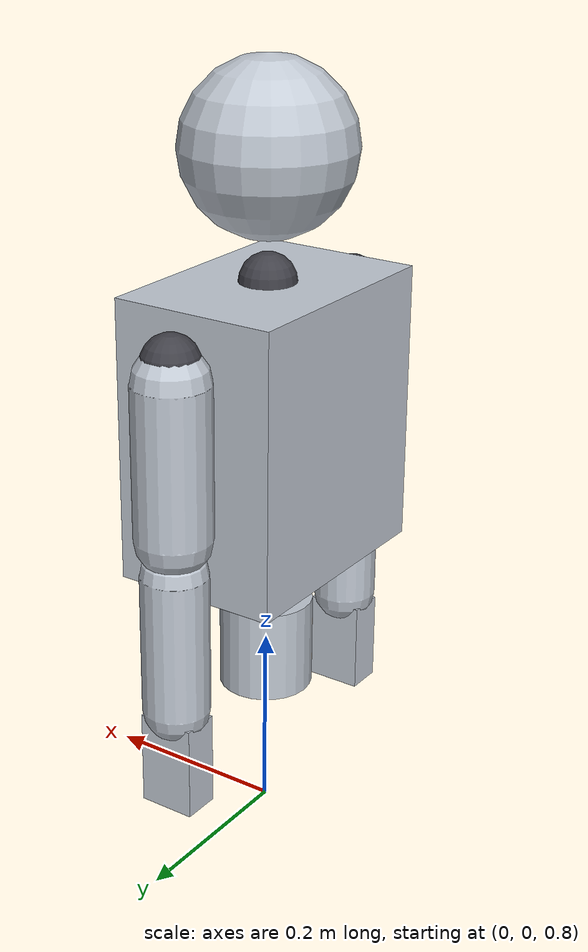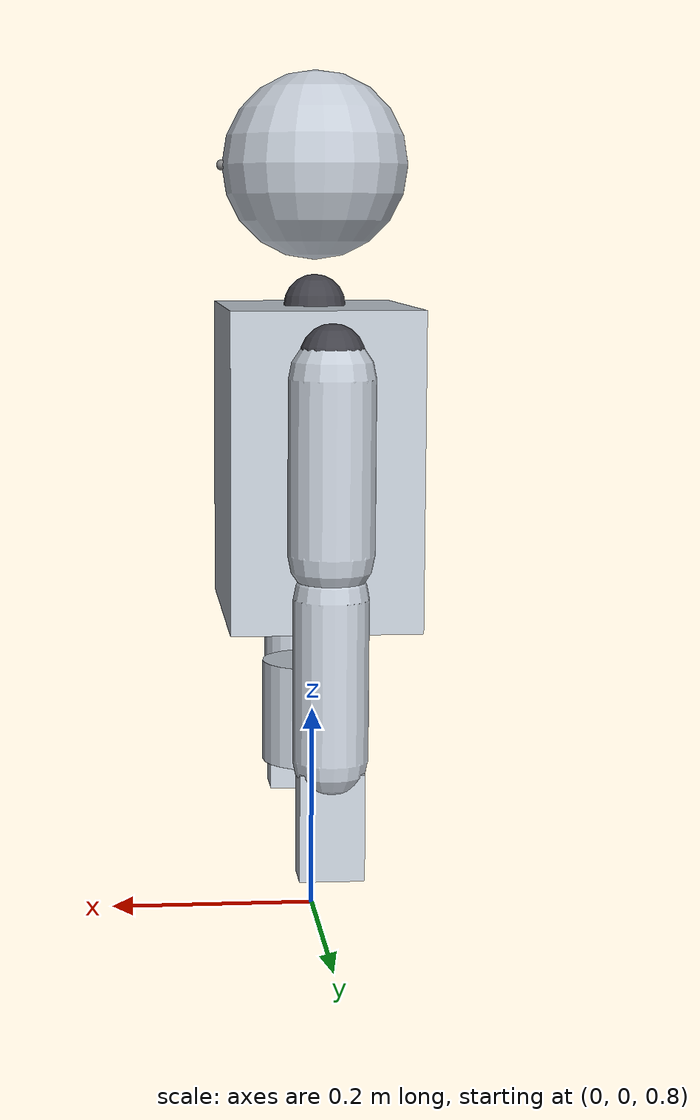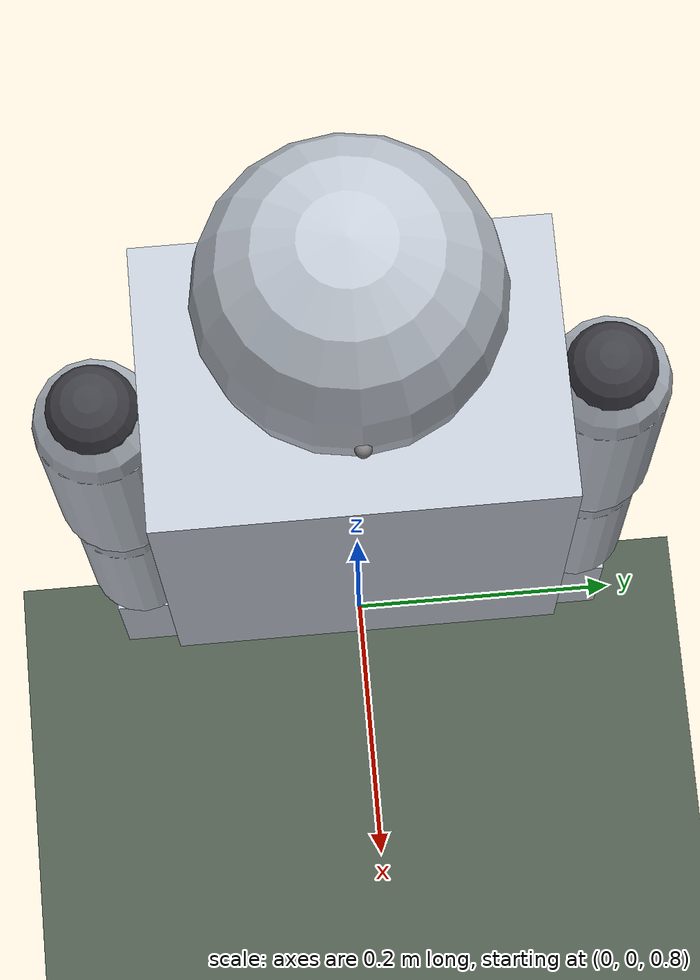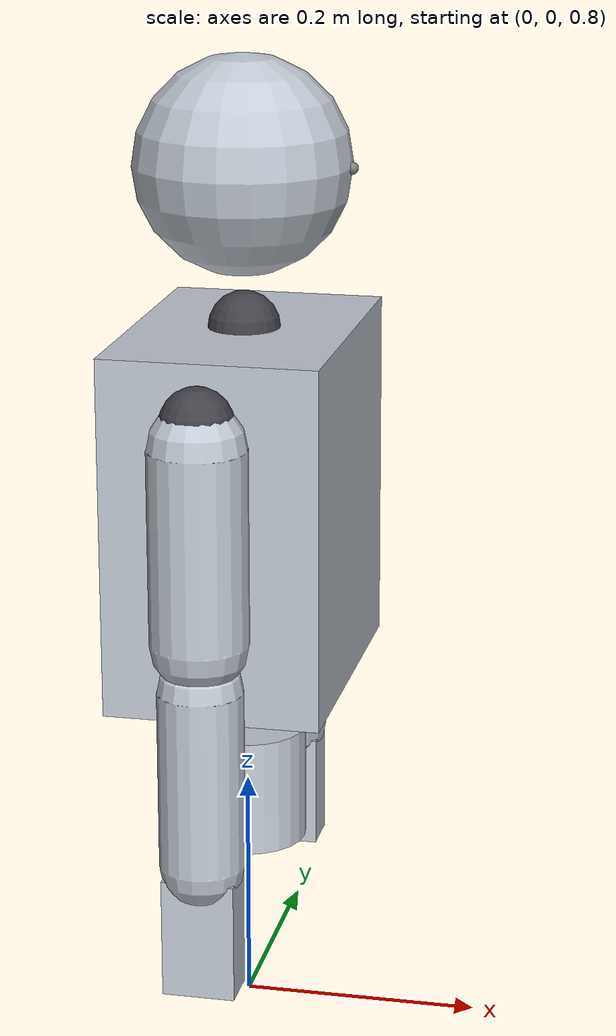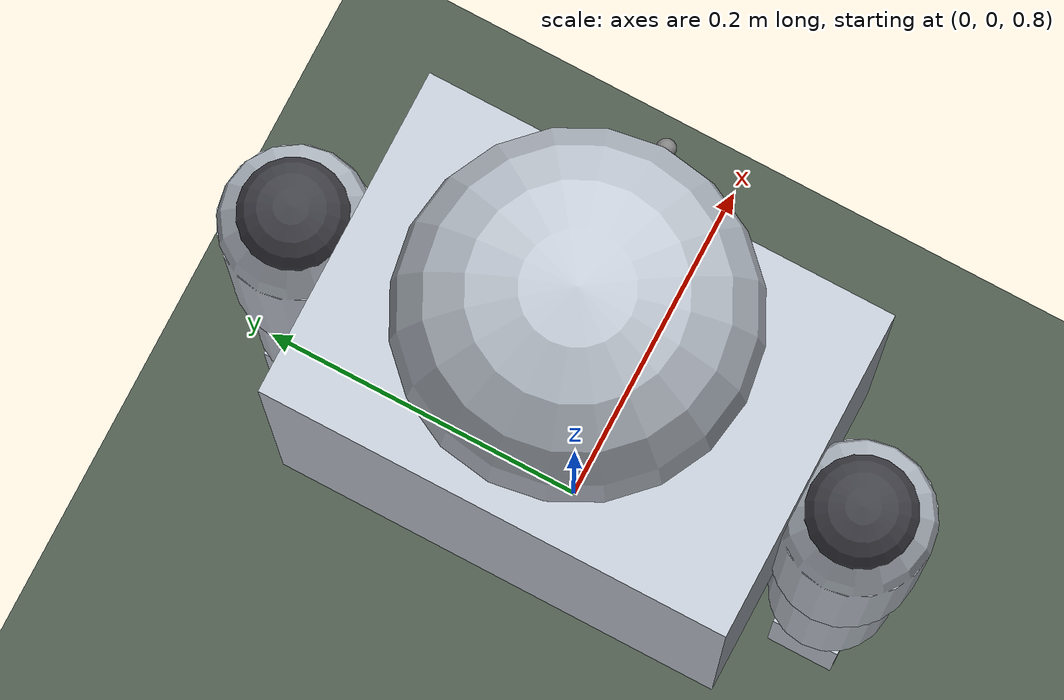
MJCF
<mujoco model="asimov1_upper_body">
  <compiler angle="radian" autolimits="true" />
  <option timestep="0.002" integrator="implicitfast" />
  <default>
    <geom friction="1.0 0.005 0.0001" rgba="0.75 0.78 0.82 1" />
  </default>
  <worldbody>
    <light pos="0 0 3" dir="0 0 -1" />
    <geom name="floor" type="plane" size="5 5 0.1" rgba="0.3 0.35 0.3 1" />
    <body name="waist_mount" pos="0 0 1.0">
      <geom type="cylinder" size="0.05 0.05" mass="50" />
      <body name="torso" pos="0 0 0.1">
        <joint name="waist_yaw_joint" axis="0 0 1" range="-1.57 1.57" damping="1.0" armature="0.05" limited="true" />
        <geom name="torso_geom" type="box" pos="0 0 0.15" size="0.09 0.13 0.15" mass="6.2" />
        <geom name="battery_pack" type="box" pos="0 -0.0 0.06" size="0.06 0.09 0.035" mass="2.0" contype="0" conaffinity="0" rgba="0.8 0.6 0.1 1" />
        <site name="imu" pos="0 0 0.15" />
        <body name="neck" pos="0 0 0.3">
          <joint name="neck_yaw_joint" axis="0 0 1" range="-1.57 1.57" damping="1.0" armature="0.01" limited="true" />
          <geom type="sphere" size="0.03" mass="0.15" contype="0" conaffinity="0" rgba="0.25 0.25 0.28 1" />
          <body name="head" pos="0 0 0.08">
            <joint name="neck_pitch_joint" axis="0 1 0" range="-0.79 0.79" damping="1.0" armature="0.01" limited="true" />
            <geom type="sphere" pos="0 0 0.054" size="0.09" mass="1.5" />
            <site name="camera_mount" pos="0.09 0 0.054" />
          </body>
        </body>
        <body name="left_shoulder" pos="0 0.16 0.26">
          <joint name="left_shoulder_pitch_joint" axis="0 1 0" range="-3.14 0.87" damping="1.0" armature="0.05" limited="true" />
          <geom type="sphere" size="0.03" mass="0.4" contype="0" conaffinity="0" rgba="0.25 0.25 0.28 1" />
          <body name="left_shoulder2" pos="0 0 0">
            <joint name="left_shoulder_roll_joint" axis="-1 0 0" range="-1.57 0" damping="1.0" armature="0.05" limited="true" />
            <geom type="sphere" size="0.03" mass="0.3" contype="0" conaffinity="0" rgba="0.25 0.25 0.28 1" />
            <body name="left_upper_arm" pos="0 0 0">
              <joint name="left_shoulder_yaw_joint" axis="0 0 1" range="-1.57 1.57" damping="1.0" armature="0.01" limited="true" />
              <geom type="capsule" fromto="0 0 -0.02 0 0 -0.18" size="0.04" mass="1.6" />
              <body name="left_forearm" pos="0 0 -0.2">
                <joint name="left_elbow_joint" axis="0 1 0" range="0 2.44" damping="1.0" armature="0.01" limited="true" />
                <geom type="capsule" fromto="0 0 -0.02 0 0 -0.17" size="0.035" mass="1.0" />
                <body name="left_hand" pos="0 0 -0.19">
                  <joint name="left_wrist_yaw_joint" axis="0 0 1" range="-3.14 3.14" damping="1.0" armature="0.01" limited="true" />
                  <geom type="box" pos="0 0 -0.04" size="0.03 0.02 0.05" mass="0.4" />
                </body>
              </body>
            </body>
          </body>
        </body>
        <body name="right_shoulder" pos="0 -0.16 0.26">
          <joint name="right_shoulder_pitch_joint" axis="0 -1 0" range="-0.87 3.14" damping="1.0" armature="0.05" limited="true" />
          <geom type="sphere" size="0.03" mass="0.4" contype="0" conaffinity="0" rgba="0.25 0.25 0.28 1" />
          <body name="right_shoulder2" pos="0 0 0">
            <joint name="right_shoulder_roll_joint" axis="-1 0 0" range="0 1.57" damping="1.0" armature="0.05" limited="true" />
            <geom type="sphere" size="0.03" mass="0.3" contype="0" conaffinity="0" rgba="0.25 0.25 0.28 1" />
            <body name="right_upper_arm" pos="0 0 0">
              <joint name="right_shoulder_yaw_joint" axis="0 0 1" range="-1.57 1.57" damping="1.0" armature="0.01" limited="true" />
              <geom type="capsule" fromto="0 0 -0.02 0 0 -0.18" size="0.04" mass="1.6" />
              <body name="right_forearm" pos="0 0 -0.2">
                <joint name="right_elbow_joint" axis="0 -1 0" range="-2.44 0" damping="1.0" armature="0.01" limited="true" />
                <geom type="capsule" fromto="0 0 -0.02 0 0 -0.17" size="0.035" mass="1.0" />
                <body name="right_hand" pos="0 0 -0.19">
                  <joint name="right_wrist_yaw_joint" axis="0 0 1" range="-3.14 3.14" damping="1.0" armature="0.01" limited="true" />
                  <geom type="box" pos="0 0 -0.04" size="0.03 0.02 0.05" mass="0.4" />
                </body>
              </body>
            </body>
          </body>
        </body>
      </body>
    </body>
  </worldbody>
  <contact>
    <exclude body1="torso" body2="left_upper_arm" />
    <exclude body1="torso" body2="right_upper_arm" />
  </contact>
  <actuator>
    <motor name="waist_yaw" joint="waist_yaw_joint" ctrlrange="-120 120" />
    <motor name="neck_yaw" joint="neck_yaw_joint" ctrlrange="-36 36" />
    <motor name="neck_pitch" joint="neck_pitch_joint" ctrlrange="-36 36" />
    <motor name="left_shoulder_pitch" joint="left_shoulder_pitch_joint" ctrlrange="-90 90" />
    <motor name="left_shoulder_roll" joint="left_shoulder_roll_joint" ctrlrange="-75 75" />
    <motor name="left_shoulder_yaw" joint="left_shoulder_yaw_joint" ctrlrange="-60 60" />
    <motor name="left_elbow" joint="left_elbow_joint" ctrlrange="-36 36" />
    <motor name="left_wrist_yaw" joint="left_wrist_yaw_joint" ctrlrange="-36 36" />
    <motor name="right_shoulder_pitch" joint="right_shoulder_pitch_joint" ctrlrange="-90 90" />
    <motor name="right_shoulder_roll" joint="right_shoulder_roll_joint" ctrlrange="-75 75" />
    <motor name="right_shoulder_yaw" joint="right_shoulder_yaw_joint" ctrlrange="-60 60" />
    <motor name="right_elbow" joint="right_elbow_joint" ctrlrange="-36 36" />
    <motor name="right_wrist_yaw" joint="right_wrist_yaw_joint" ctrlrange="-36 36" />
  </actuator>
  <sensor>
    <jointpos name="waist_yaw_joint_pos" joint="waist_yaw_joint" />
    <jointvel name="waist_yaw_joint_vel" joint="waist_yaw_joint" />
    <jointpos name="neck_yaw_joint_pos" joint="neck_yaw_joint" />
    <jointvel name="neck_yaw_joint_vel" joint="neck_yaw_joint" />
    <jointpos name="neck_pitch_joint_pos" joint="neck_pitch_joint" />
    <jointvel name="neck_pitch_joint_vel" joint="neck_pitch_joint" />
    <jointpos name="left_shoulder_pitch_joint_pos" joint="left_shoulder_pitch_joint" />
    <jointvel name="left_shoulder_pitch_joint_vel" joint="left_shoulder_pitch_joint" />
    <jointpos name="left_shoulder_roll_joint_pos" joint="left_shoulder_roll_joint" />
    <jointvel name="left_shoulder_roll_joint_vel" joint="left_shoulder_roll_joint" />
    <jointpos name="left_shoulder_yaw_joint_pos" joint="left_shoulder_yaw_joint" />
    <jointvel name="left_shoulder_yaw_joint_vel" joint="left_shoulder_yaw_joint" />
    <jointpos name="left_elbow_joint_pos" joint="left_elbow_joint" />
    <jointvel name="left_elbow_joint_vel" joint="left_elbow_joint" />
    <jointpos name="left_wrist_yaw_joint_pos" joint="left_wrist_yaw_joint" />
    <jointvel name="left_wrist_yaw_joint_vel" joint="left_wrist_yaw_joint" />
    <jointpos name="right_shoulder_pitch_joint_pos" joint="right_shoulder_pitch_joint" />
    <jointvel name="right_shoulder_pitch_joint_vel" joint="right_shoulder_pitch_joint" />
    <jointpos name="right_shoulder_roll_joint_pos" joint="right_shoulder_roll_joint" />
    <jointvel name="right_shoulder_roll_joint_vel" joint="right_shoulder_roll_joint" />
    <jointpos name="right_shoulder_yaw_joint_pos" joint="right_shoulder_yaw_joint" />
    <jointvel name="right_shoulder_yaw_joint_vel" joint="right_shoulder_yaw_joint" />
    <jointpos name="right_elbow_joint_pos" joint="right_elbow_joint" />
    <jointvel name="right_elbow_joint_vel" joint="right_elbow_joint" />
    <jointpos name="right_wrist_yaw_joint_pos" joint="right_wrist_yaw_joint" />
    <jointvel name="right_wrist_yaw_joint_vel" joint="right_wrist_yaw_joint" />
  </sensor>
</mujoco>
